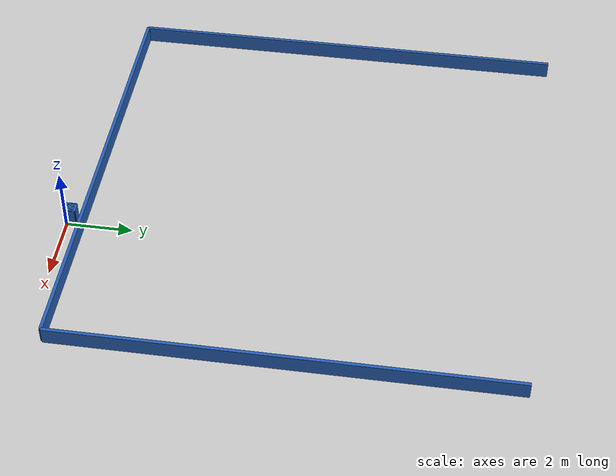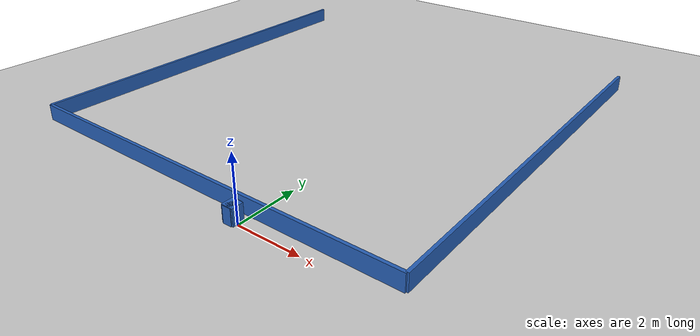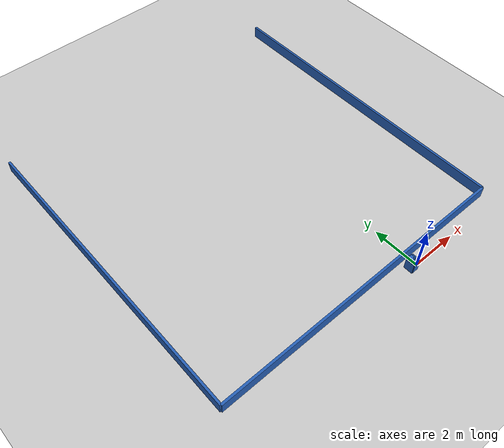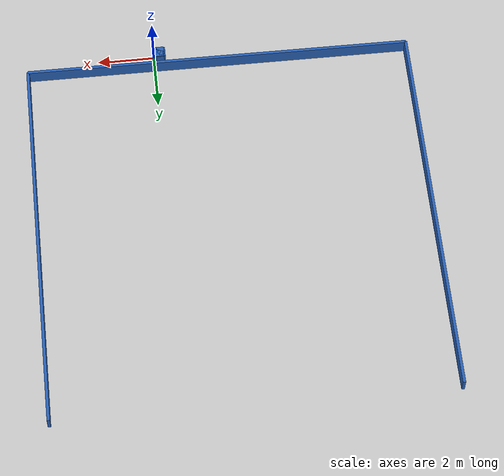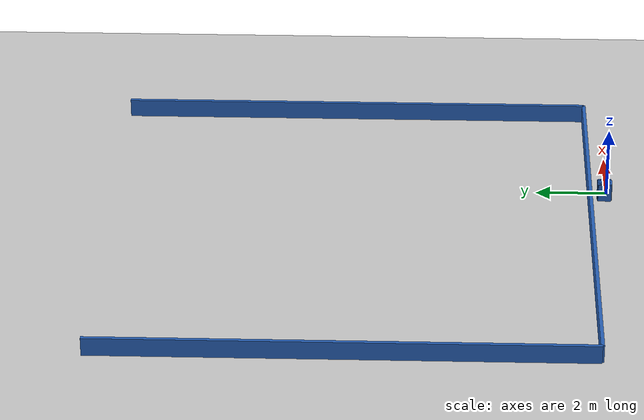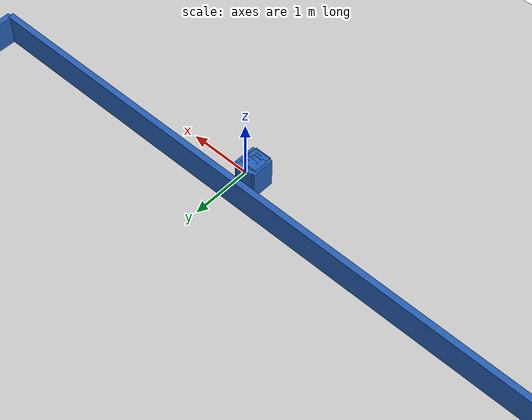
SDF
<?xml version="1.0" ?>
    <sdf version="1.5">
      <world name="default">
        <!-- A global light source -->
        <include>
          <uri>model://sun</uri>
        </include>
        <!-- A ground plane -->
        <include>
          <uri>model://ground_plane</uri>
        </include>

    <model name='libopen_space_final_T2B_115_16'>
      <static>1</static>
      <pose frame=''>-0.225000 0.075000 0.000000 0.000000 0.000000 0.000000</pose>
      <link name='link'>
        <inertial>
          <mass>1</mass>
          <inertia>
            <ixx>0.145833</ixx>
            <ixy>0</ixy>
            <ixz>0</ixz>
            <iyy>0.145833</iyy>
            <iyz>0</iyz>
            <izz>0.125</izz>
          </inertia>
        </inertial>
        <collision name='collision'>
          <geometry>
            <box>
              <size>0.11 0.26 1</size>
            </box>
          </geometry>
          <max_contacts>10</max_contacts>
          <surface>
            <contact>
              <ode/>
            </contact>
            <bounce/>
            <friction>
              <torsional>
                <ode/>
              </torsional>
              <ode/>
            </friction>
          </surface>
        </collision>
        <visual name='visual'>
          <geometry>
            <box>
              <size>0.11 0.26 1</size>
            </box>
          </geometry>
	    <material>
              <ambient>0.152000 0.379000 0.720000 1</ambient>
	      <diffuse>0.152000 0.379000 0.720000 1</diffuse>
          </material>
          <material>
            <script>
              <name>Gazebo/Grey</name>
              <uri>file://media/materials/scripts/gazebo.material</uri>
            </script>
          </material>
        </visual>
        <self_collide>0</self_collide>
        <kinematic>0</kinematic>
        <gravity>1</gravity>
      </link>
      <plugin name='libopen_space_final_T2B_115_16' filename='libopen_space_final_T2B_115_16.so'/>
    </model>

    <model name='libopen_space_final_T2B_139_84'>
      <static>1</static>
      <pose frame=''>-0.225000 0.075000 0.000000 0.000000 0.000000 0.000000</pose>
      <link name='link'>
        <inertial>
          <mass>1</mass>
          <inertia>
            <ixx>0.145833</ixx>
            <ixy>0</ixy>
            <ixz>0</ixz>
            <iyy>0.145833</iyy>
            <iyz>0</iyz>
            <izz>0.125</izz>
          </inertia>
        </inertial>
        <collision name='collision'>
          <geometry>
            <box>
              <size>0.20 0.28 1</size>
            </box>
          </geometry>
          <max_contacts>10</max_contacts>
          <surface>
            <contact>
              <ode/>
            </contact>
            <bounce/>
            <friction>
              <torsional>
                <ode/>
              </torsional>
              <ode/>
            </friction>
          </surface>
        </collision>
        <visual name='visual'>
          <geometry>
            <box>
              <size>0.20 0.28 1</size>
            </box>
          </geometry>
	    <material>
              <ambient>0.152000 0.379000 0.720000 1</ambient>
	      <diffuse>0.152000 0.379000 0.720000 1</diffuse>
          </material>
          <material>
            <script>
              <name>Gazebo/Grey</name>
              <uri>file://media/materials/scripts/gazebo.material</uri>
            </script>
          </material>
        </visual>
        <self_collide>0</self_collide>
        <kinematic>0</kinematic>
        <gravity>1</gravity>
      </link>
      <plugin name='libopen_space_final_T2B_139_84' filename='libopen_space_final_T2B_139_84.so'/>
    </model>

    <model name='libopen_space_final_T2B_90_95'>
      <static>1</static>
      <pose frame=''>-0.225000 0.075000 0.000000 0.000000 0.000000 0.000000</pose>
      <link name='link'>
        <inertial>
          <mass>1</mass>
          <inertia>
            <ixx>0.145833</ixx>
            <ixy>0</ixy>
            <ixz>0</ixz>
            <iyy>0.145833</iyy>
            <iyz>0</iyz>
            <izz>0.125</izz>
          </inertia>
        </inertial>
        <collision name='collision'>
          <geometry>
            <box>
              <size>0.28 0.23 1</size>
            </box>
          </geometry>
          <max_contacts>10</max_contacts>
          <surface>
            <contact>
              <ode/>
            </contact>
            <bounce/>
            <friction>
              <torsional>
                <ode/>
              </torsional>
              <ode/>
            </friction>
          </surface>
        </collision>
        <visual name='visual'>
          <geometry>
            <box>
              <size>0.28 0.23 1</size>
            </box>
          </geometry>
	    <material>
              <ambient>0.152000 0.379000 0.720000 1</ambient>
	      <diffuse>0.152000 0.379000 0.720000 1</diffuse>
          </material>
          <material>
            <script>
              <name>Gazebo/Grey</name>
              <uri>file://media/materials/scripts/gazebo.material</uri>
            </script>
          </material>
        </visual>
        <self_collide>0</self_collide>
        <kinematic>0</kinematic>
        <gravity>1</gravity>
      </link>
      <plugin name='libopen_space_final_T2B_90_95' filename='libopen_space_final_T2B_90_95.so'/>
    </model>

    <model name='libopen_space_final_T2B_112_98'>
      <static>1</static>
      <pose frame=''>-0.225000 0.075000 0.000000 0.000000 0.000000 0.000000</pose>
      <link name='link'>
        <inertial>
          <mass>1</mass>
          <inertia>
            <ixx>0.145833</ixx>
            <ixy>0</ixy>
            <ixz>0</ixz>
            <iyy>0.145833</iyy>
            <iyz>0</iyz>
            <izz>0.125</izz>
          </inertia>
        </inertial>
        <collision name='collision'>
          <geometry>
            <box>
              <size>0.37 0.37 1</size>
            </box>
          </geometry>
          <max_contacts>10</max_contacts>
          <surface>
            <contact>
              <ode/>
            </contact>
            <bounce/>
            <friction>
              <torsional>
                <ode/>
              </torsional>
              <ode/>
            </friction>
          </surface>
        </collision>
        <visual name='visual'>
          <geometry>
            <box>
              <size>0.37 0.37 1</size>
            </box>
          </geometry>
	    <material>
              <ambient>0.152000 0.379000 0.720000 1</ambient>
	      <diffuse>0.152000 0.379000 0.720000 1</diffuse>
          </material>
          <material>
            <script>
              <name>Gazebo/Grey</name>
              <uri>file://media/materials/scripts/gazebo.material</uri>
            </script>
          </material>
        </visual>
        <self_collide>0</self_collide>
        <kinematic>0</kinematic>
        <gravity>1</gravity>
      </link>
      <plugin name='libopen_space_final_T2B_112_98' filename='libopen_space_final_T2B_112_98.so'/>
    </model>

    <model name='libopen_space_final_T2B_52_49'>
      <static>1</static>
      <pose frame=''>-0.225000 0.075000 0.000000 0.000000 0.000000 0.000000</pose>
      <link name='link'>
        <inertial>
          <mass>1</mass>
          <inertia>
            <ixx>0.145833</ixx>
            <ixy>0</ixy>
            <ixz>0</ixz>
            <iyy>0.145833</iyy>
            <iyz>0</iyz>
            <izz>0.125</izz>
          </inertia>
        </inertial>
        <collision name='collision'>
          <geometry>
            <box>
              <size>0.31 0.25 1</size>
            </box>
          </geometry>
          <max_contacts>10</max_contacts>
          <surface>
            <contact>
              <ode/>
            </contact>
            <bounce/>
            <friction>
              <torsional>
                <ode/>
              </torsional>
              <ode/>
            </friction>
          </surface>
        </collision>
        <visual name='visual'>
          <geometry>
            <box>
              <size>0.31 0.25 1</size>
            </box>
          </geometry>
	    <material>
              <ambient>0.152000 0.379000 0.720000 1</ambient>
	      <diffuse>0.152000 0.379000 0.720000 1</diffuse>
          </material>
          <material>
            <script>
              <name>Gazebo/Grey</name>
              <uri>file://media/materials/scripts/gazebo.material</uri>
            </script>
          </material>
        </visual>
        <self_collide>0</self_collide>
        <kinematic>0</kinematic>
        <gravity>1</gravity>
      </link>
      <plugin name='libopen_space_final_T2B_52_49' filename='libopen_space_final_T2B_52_49.so'/>
    </model>

    <model name='libopen_space_final_T2B_73_39'>
      <static>1</static>
      <pose frame=''>-0.225000 0.075000 0.000000 0.000000 0.000000 0.000000</pose>
      <link name='link'>
        <inertial>
          <mass>1</mass>
          <inertia>
            <ixx>0.145833</ixx>
            <ixy>0</ixy>
            <ixz>0</ixz>
            <iyy>0.145833</iyy>
            <iyz>0</iyz>
            <izz>0.125</izz>
          </inertia>
        </inertial>
        <collision name='collision'>
          <geometry>
            <box>
              <size>0.16 0.29 1</size>
            </box>
          </geometry>
          <max_contacts>10</max_contacts>
          <surface>
            <contact>
              <ode/>
            </contact>
            <bounce/>
            <friction>
              <torsional>
                <ode/>
              </torsional>
              <ode/>
            </friction>
          </surface>
        </collision>
        <visual name='visual'>
          <geometry>
            <box>
              <size>0.16 0.29 1</size>
            </box>
          </geometry>
	    <material>
              <ambient>0.152000 0.379000 0.720000 1</ambient>
	      <diffuse>0.152000 0.379000 0.720000 1</diffuse>
          </material>
          <material>
            <script>
              <name>Gazebo/Grey</name>
              <uri>file://media/materials/scripts/gazebo.material</uri>
            </script>
          </material>
        </visual>
        <self_collide>0</self_collide>
        <kinematic>0</kinematic>
        <gravity>1</gravity>
      </link>
      <plugin name='libopen_space_final_T2B_73_39' filename='libopen_space_final_T2B_73_39.so'/>
    </model>

    <model name='libopen_space_final_T2B_51_19'>
      <static>1</static>
      <pose frame=''>-0.225000 0.075000 0.000000 0.000000 0.000000 0.000000</pose>
      <link name='link'>
        <inertial>
          <mass>1</mass>
          <inertia>
            <ixx>0.145833</ixx>
            <ixy>0</ixy>
            <ixz>0</ixz>
            <iyy>0.145833</iyy>
            <iyz>0</iyz>
            <izz>0.125</izz>
          </inertia>
        </inertial>
        <collision name='collision'>
          <geometry>
            <box>
              <size>0.26 0.38 1</size>
            </box>
          </geometry>
          <max_contacts>10</max_contacts>
          <surface>
            <contact>
              <ode/>
            </contact>
            <bounce/>
            <friction>
              <torsional>
                <ode/>
              </torsional>
              <ode/>
            </friction>
          </surface>
        </collision>
        <visual name='visual'>
          <geometry>
            <box>
              <size>0.26 0.38 1</size>
            </box>
          </geometry>
	    <material>
              <ambient>0.152000 0.379000 0.720000 1</ambient>
	      <diffuse>0.152000 0.379000 0.720000 1</diffuse>
          </material>
          <material>
            <script>
              <name>Gazebo/Grey</name>
              <uri>file://media/materials/scripts/gazebo.material</uri>
            </script>
          </material>
        </visual>
        <self_collide>0</self_collide>
        <kinematic>0</kinematic>
        <gravity>1</gravity>
      </link>
      <plugin name='libopen_space_final_T2B_51_19' filename='libopen_space_final_T2B_51_19.so'/>
    </model>

    <model name='libopen_space_final_T2B_122_2'>
      <static>1</static>
      <pose frame=''>-0.225000 0.075000 0.000000 0.000000 0.000000 0.000000</pose>
      <link name='link'>
        <inertial>
          <mass>1</mass>
          <inertia>
            <ixx>0.145833</ixx>
            <ixy>0</ixy>
            <ixz>0</ixz>
            <iyy>0.145833</iyy>
            <iyz>0</iyz>
            <izz>0.125</izz>
          </inertia>
        </inertial>
        <collision name='collision'>
          <geometry>
            <box>
              <size>0.20 0.15 1</size>
            </box>
          </geometry>
          <max_contacts>10</max_contacts>
          <surface>
            <contact>
              <ode/>
            </contact>
            <bounce/>
            <friction>
              <torsional>
                <ode/>
              </torsional>
              <ode/>
            </friction>
          </surface>
        </collision>
        <visual name='visual'>
          <geometry>
            <box>
              <size>0.20 0.15 1</size>
            </box>
          </geometry>
	    <material>
              <ambient>0.152000 0.379000 0.720000 1</ambient>
	      <diffuse>0.152000 0.379000 0.720000 1</diffuse>
          </material>
          <material>
            <script>
              <name>Gazebo/Grey</name>
              <uri>file://media/materials/scripts/gazebo.material</uri>
            </script>
          </material>
        </visual>
        <self_collide>0</self_collide>
        <kinematic>0</kinematic>
        <gravity>1</gravity>
      </link>
      <plugin name='libopen_space_final_T2B_122_2' filename='libopen_space_final_T2B_122_2.so'/>
    </model>

    <model name='libopen_space_final_T2B_121_6'>
      <static>1</static>
      <pose frame=''>-0.225000 0.075000 0.000000 0.000000 0.000000 0.000000</pose>
      <link name='link'>
        <inertial>
          <mass>1</mass>
          <inertia>
            <ixx>0.145833</ixx>
            <ixy>0</ixy>
            <ixz>0</ixz>
            <iyy>0.145833</iyy>
            <iyz>0</iyz>
            <izz>0.125</izz>
          </inertia>
        </inertial>
        <collision name='collision'>
          <geometry>
            <box>
              <size>0.18 0.12 1</size>
            </box>
          </geometry>
          <max_contacts>10</max_contacts>
          <surface>
            <contact>
              <ode/>
            </contact>
            <bounce/>
            <friction>
              <torsional>
                <ode/>
              </torsional>
              <ode/>
            </friction>
          </surface>
        </collision>
        <visual name='visual'>
          <geometry>
            <box>
              <size>0.18 0.12 1</size>
            </box>
          </geometry>
	    <material>
              <ambient>0.152000 0.379000 0.720000 1</ambient>
	      <diffuse>0.152000 0.379000 0.720000 1</diffuse>
          </material>
          <material>
            <script>
              <name>Gazebo/Grey</name>
              <uri>file://media/materials/scripts/gazebo.material</uri>
            </script>
          </material>
        </visual>
        <self_collide>0</self_collide>
        <kinematic>0</kinematic>
        <gravity>1</gravity>
      </link>
      <plugin name='libopen_space_final_T2B_121_6' filename='libopen_space_final_T2B_121_6.so'/>
    </model>

    <model name='libopen_space_final_T2B_71_69'>
      <static>1</static>
      <pose frame=''>-0.225000 0.075000 0.000000 0.000000 0.000000 0.000000</pose>
      <link name='link'>
        <inertial>
          <mass>1</mass>
          <inertia>
            <ixx>0.145833</ixx>
            <ixy>0</ixy>
            <ixz>0</ixz>
            <iyy>0.145833</iyy>
            <iyz>0</iyz>
            <izz>0.125</izz>
          </inertia>
        </inertial>
        <collision name='collision'>
          <geometry>
            <box>
              <size>0.28 0.41 1</size>
            </box>
          </geometry>
          <max_contacts>10</max_contacts>
          <surface>
            <contact>
              <ode/>
            </contact>
            <bounce/>
            <friction>
              <torsional>
                <ode/>
              </torsional>
              <ode/>
            </friction>
          </surface>
        </collision>
        <visual name='visual'>
          <geometry>
            <box>
              <size>0.28 0.41 1</size>
            </box>
          </geometry>
	    <material>
              <ambient>0.152000 0.379000 0.720000 1</ambient>
	      <diffuse>0.152000 0.379000 0.720000 1</diffuse>
          </material>
          <material>
            <script>
              <name>Gazebo/Grey</name>
              <uri>file://media/materials/scripts/gazebo.material</uri>
            </script>
          </material>
        </visual>
        <self_collide>0</self_collide>
        <kinematic>0</kinematic>
        <gravity>1</gravity>
      </link>
      <plugin name='libopen_space_final_T2B_71_69' filename='libopen_space_final_T2B_71_69.so'/>
    </model>

    <model name='libopen_space_final_T2B_105_8'>
      <static>1</static>
      <pose frame=''>-0.225000 0.075000 0.000000 0.000000 0.000000 0.000000</pose>
      <link name='link'>
        <inertial>
          <mass>1</mass>
          <inertia>
            <ixx>0.145833</ixx>
            <ixy>0</ixy>
            <ixz>0</ixz>
            <iyy>0.145833</iyy>
            <iyz>0</iyz>
            <izz>0.125</izz>
          </inertia>
        </inertial>
        <collision name='collision'>
          <geometry>
            <box>
              <size>0.15 0.17 1</size>
            </box>
          </geometry>
          <max_contacts>10</max_contacts>
          <surface>
            <contact>
              <ode/>
            </contact>
            <bounce/>
            <friction>
              <torsional>
                <ode/>
              </torsional>
              <ode/>
            </friction>
          </surface>
        </collision>
        <visual name='visual'>
          <geometry>
            <box>
              <size>0.15 0.17 1</size>
            </box>
          </geometry>
	    <material>
              <ambient>0.152000 0.379000 0.720000 1</ambient>
	      <diffuse>0.152000 0.379000 0.720000 1</diffuse>
          </material>
          <material>
            <script>
              <name>Gazebo/Grey</name>
              <uri>file://media/materials/scripts/gazebo.material</uri>
            </script>
          </material>
        </visual>
        <self_collide>0</self_collide>
        <kinematic>0</kinematic>
        <gravity>1</gravity>
      </link>
      <plugin name='libopen_space_final_T2B_105_8' filename='libopen_space_final_T2B_105_8.so'/>
    </model>

        <model name='bottom_wall'>
          <static>1</static>
          <pose frame=''>-2.25 0.5 0.000000 0.000000 0.000000 1.57079632</pose>
          <link name='link'>
            <inertial>
            <mass>1</mass>
            <inertia>
              <ixx>0.145833</ixx>
              <ixy>0</ixy>
              <ixz>0</ixz>
              <iyy>0.145833</iyy>
              <iyz>0</iyz>
              <izz>0.125</izz>
            </inertia>
            </inertial>
            <collision name='collision'>
            <geometry>
              <box>
              <size>0.1 13.5 1</size>
              </box>
            </geometry>
            <max_contacts>10</max_contacts>
            <surface>
              <contact>
              <ode/>
              </contact>
              <bounce/>
              <friction>
              <torsional>
                <ode/>
              </torsional>
              <ode/>
              </friction>
            </surface>
            </collision>
            <visual name='visual'>
            <geometry>
              <box>
              <size>0.1 13.5 1</size>
              </box>
            </geometry>
            <material>
              <ambient>0.152000 0.379000 0.720000 1</ambient>
            <diffuse>0.152000 0.379000 0.720000 1</diffuse>
            </material>
            <material>
              <script>
              <name>Gazebo/Grey</name>
              <uri>file://media/materials/scripts/gazebo.material</uri>
              </script>
            </material>
            </visual>
            <self_collide>0</self_collide>
            <kinematic>0</kinematic>
            <gravity>1</gravity>
          </link>
        </model>

        <model name='left_wall'>
          <static>1</static>
          <pose frame=''>-9 7.25 0.000000 0.000000 0.000000 0.000000</pose>
          <link name='link'>
            <inertial>
            <mass>1</mass>
            <inertia>
              <ixx>0.145833</ixx>
              <ixy>0</ixy>
              <ixz>0</ixz>
              <iyy>0.145833</iyy>
              <iyz>0</iyz>
              <izz>0.125</izz>
            </inertia>
            </inertial>
            <collision name='collision'>
            <geometry>
              <box>
              <size>0.1 13.5 1</size>
              </box>
            </geometry>
            <max_contacts>10</max_contacts>
            <surface>
              <contact>
              <ode/>
              </contact>
              <bounce/>
              <friction>
              <torsional>
                <ode/>
              </torsional>
              <ode/>
              </friction>
            </surface>
            </collision>
            <visual name='visual'>
            <geometry>
              <box>
              <size>0.1 13.5 1</size>
              </box>
            </geometry>
            <material>
              <ambient>0.152000 0.379000 0.720000 1</ambient>
            <diffuse>0.152000 0.379000 0.720000 1</diffuse>
            </material>
            <material>
              <script>
              <name>Gazebo/Grey</name>
              <uri>file://media/materials/scripts/gazebo.material</uri>
              </script>
            </material>
            </visual>
            <self_collide>0</self_collide>
            <kinematic>0</kinematic>
            <gravity>1</gravity>
          </link>
        </model>

        <model name='right_wall'>
          <static>1</static>
          <pose frame=''>4.5 7.25 0.000000 0.000000 0.000000 0.000000</pose>
          <link name='link'>
            <inertial>
            <mass>1</mass>
            <inertia>
              <ixx>0.145833</ixx>
              <ixy>0</ixy>
              <ixz>0</ixz>
              <iyy>0.145833</iyy>
              <iyz>0</iyz>
              <izz>0.125</izz>
            </inertia>
            </inertial>
            <collision name='collision'>
            <geometry>
              <box>
              <size>0.1 13.5 1</size>
              </box>
            </geometry>
            <max_contacts>10</max_contacts>
            <surface>
              <contact>
              <ode/>
              </contact>
              <bounce/>
              <friction>
              <torsional>
                <ode/>
              </torsional>
              <ode/>
              </friction>
            </surface>
            </collision>
            <visual name='visual'>
            <geometry>
              <box>
              <size>0.1 13.5 1</size>
              </box>
            </geometry>
            <material>
              <ambient>0.152000 0.379000 0.720000 1</ambient>
            <diffuse>0.152000 0.379000 0.720000 1</diffuse>
            </material>
            <material>
              <script>
              <name>Gazebo/Grey</name>
              <uri>file://media/materials/scripts/gazebo.material</uri>
              </script>
            </material>
            </visual>
            <self_collide>0</self_collide>
            <kinematic>0</kinematic>
            <gravity>1</gravity>
          </link>
        </model>

      </world>
    </sdf>"
